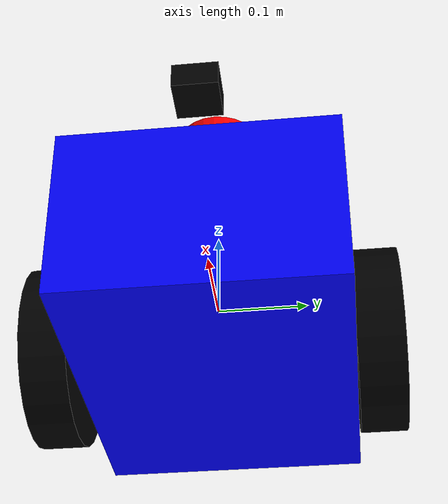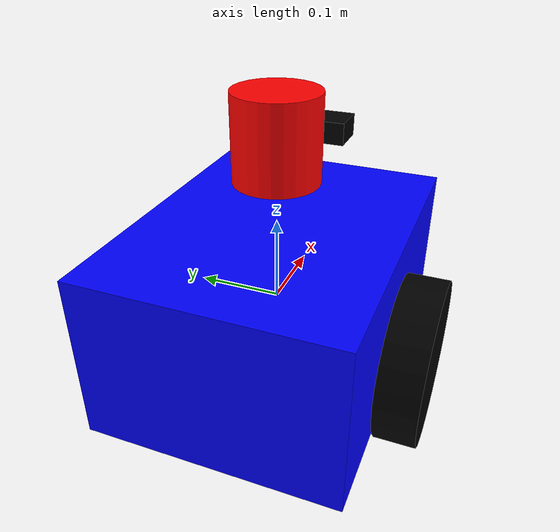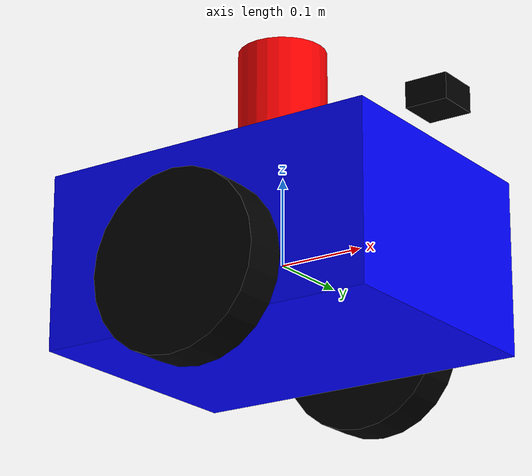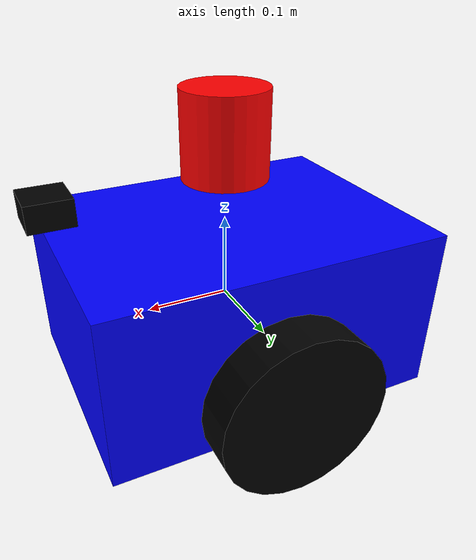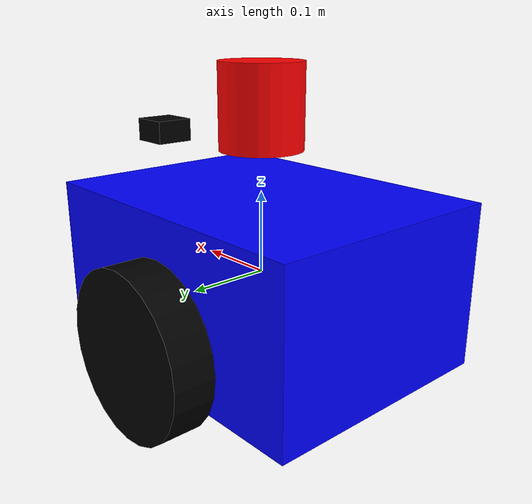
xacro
<?xml version="1.0"?>
<robot xmlns:xacro="http://www.ros.org/wiki/xacro" name="virtual_robot">

  <!-- Base Link -->
  <link name="base_link">
    <visual>
      <geometry>
        <box size="0.4 0.3 0.2"/>
      </geometry>
      <material name="blue">
        <color rgba="0 0 1 1"/>
      </material>
    </visual>
    <collision>
      <geometry>
        <box size="0.4 0.3 0.2"/>
      </geometry>
    </collision>
    <inertial>
      <mass value="10.0"/>
      <inertia ixx="0.4" ixy="0.0" ixz="0.0" iyy="0.4" iyz="0.0" izz="0.2"/>
    </inertial>
  </link>

  <!-- Camera Link -->
  <link name="camera_link">
    <visual>
      <geometry>
        <box size="0.05 0.05 0.03"/>
      </geometry>
      <material name="black">
        <color rgba="0 0 0 1"/>
      </material>
    </visual>
    <collision>
      <geometry>
        <box size="0.05 0.05 0.03"/>
      </geometry>
    </collision>
    <inertial>
      <mass value="0.1"/>
      <inertia ixx="0.0001" ixy="0.0" ixz="0.0" iyy="0.0001" iyz="0.0" izz="0.0001"/>
    </inertial>
  </link>

  <!-- Camera Joint -->
  <joint name="camera_joint" type="fixed">
    <parent link="base_link"/>
    <child link="camera_link"/>
    <origin xyz="0.2 0.0 0.15" rpy="0 0 0"/>
  </joint>

  <!-- Camera Gazebo Plugin -->
  <gazebo reference="camera_link">
    <sensor type="camera" name="camera_sensor">
      <update_rate>30</update_rate>
      <camera name="camera">
        <horizontal_fov>1.047198</horizontal_fov>
        <image>
          <width>640</width>
          <height>480</height>
          <format>R8G8B8</format>
        </image>
        <clip>
          <near>0.05</near>
          <far>3</far>
        </clip>
      </camera>
      <plugin name="camera_controller" filename="libgazebo_ros_camera.so">
        <ros>
          <namespace>/</namespace>
          <remapping>~/image_raw:=/camera/image_raw</remapping>
          <remapping>~/camera_info:=/camera/camera_info</remapping>
        </ros>
        <camera_name>camera</camera_name>
        <frame_name>camera_link</frame_name>
        <hack_baseline>0.07</hack_baseline>
        <min_depth>0.05</min_depth>
        <max_depth>3.0</max_depth>
      </plugin>
    </sensor>
  </gazebo>

  <!-- LIDAR Link -->
  <link name="lidar_link">
    <visual>
      <geometry>
        <cylinder radius="0.05" length="0.1"/>
      </geometry>
      <material name="red">
        <color rgba="1 0 0 1"/>
      </material>
    </visual>
    <collision>
      <geometry>
        <cylinder radius="0.05" length="0.1"/>
      </geometry>
    </collision>
    <inertial>
      <mass value="0.2"/>
      <inertia ixx="0.0001" ixy="0.0" ixz="0.0" iyy="0.0001" iyz="0.0" izz="0.0001"/>
    </inertial>
  </link>

  <!-- LIDAR Joint -->
  <joint name="lidar_joint" type="fixed">
    <parent link="base_link"/>
    <child link="lidar_link"/>
    <origin xyz="0.0 0.0 0.2" rpy="0 0 0"/>
  </joint>

  <!-- LIDAR Gazebo Plugin -->
  <gazebo reference="lidar_link">
    <sensor type="ray" name="lidar_sensor">
      <pose>0 0 0 0 0 0</pose>
      <visualize>true</visualize>
      <update_rate>10</update_rate>
      <ray>
        <scan>
          <horizontal>
            <samples>360</samples>
            <resolution>1</resolution>
            <min_angle>-3.14159</min_angle>
            <max_angle>3.14159</max_angle>
          </horizontal>
        </scan>
        <range>
          <min>0.1</min>
          <max>10.0</max>
          <resolution>0.01</resolution>
        </range>
        <noise>
          <type>gaussian</type>
          <mean>0.0</mean>
          <stddev>0.01</stddev>
        </noise>
      </ray>
      <plugin name="lidar_controller" filename="libgazebo_ros_ray_sensor.so">
        <ros>
          <namespace>/</namespace>
          <remapping>~/out:=/lidar/scan</remapping>
        </ros>
        <output_type>sensor_msgs/LaserScan</output_type>
        <frame_name>lidar_link</frame_name>
      </plugin>
    </sensor>
  </gazebo>

  <!-- Left Wheel -->
  <link name="left_wheel">
    <visual>
      <geometry>
        <cylinder radius="0.1" length="0.05"/>
      </geometry>
      <material name="black">
        <color rgba="0 0 0 1"/>
      </material>
    </visual>
    <collision>
      <geometry>
        <cylinder radius="0.1" length="0.05"/>
      </geometry>
      <surface>
        <friction>
          <ode>
            <mu>1.0</mu>
            <mu2>1.0</mu2>
          </ode>
        </friction>
      </surface>
    </collision>
    <inertial>
      <mass value="0.5"/>
      <inertia ixx="0.01" ixy="0.0" ixz="0.0" iyy="0.01" iyz="0.0" izz="0.01"/>
    </inertial>
  </link>

  <!-- Right Wheel -->
  <link name="right_wheel">
    <visual>
      <geometry>
        <cylinder radius="0.1" length="0.05"/>
      </geometry>
      <material name="black">
        <color rgba="0 0 0 1"/>
      </material>
    </visual>
    <collision>
      <geometry>
        <cylinder radius="0.1" length="0.05"/>
      </geometry>
      <surface>
        <friction>
          <ode>
            <mu>1.0</mu>
            <mu2>1.0</mu2>
          </ode>
        </friction>
      </surface>
    </collision>
    <inertial>
      <mass value="0.5"/>
      <inertia ixx="0.01" ixy="0.0" ixz="0.0" iyy="0.01" iyz="0.0" izz="0.01"/>
    </inertial>
  </link>

  <!-- Left Wheel Joint -->
  <joint name="left_wheel_joint" type="continuous">
    <parent link="base_link"/>
    <child link="left_wheel"/>
    <origin xyz="0.0 0.175 -0.05" rpy="1.5708 0 0"/>
    <axis xyz="0 0 1"/>
  </joint>

  <!-- Right Wheel Joint -->
  <joint name="right_wheel_joint" type="continuous">
    <parent link="base_link"/>
    <child link="right_wheel"/>
    <origin xyz="0.0 -0.175 -0.05" rpy="1.5708 0 0"/>
    <axis xyz="0 0 1"/>
  </joint>

  <!-- Differential Drive Plugin -->
  <gazebo>
    <plugin name="differential_drive_controller" filename="libgazebo_ros_diff_drive.so">
      <update_rate>30</update_rate>
      <left_joint>left_wheel_joint</left_joint>
      <right_joint>right_wheel_joint</right_joint>
      <wheel_separation>0.35</wheel_separation>
      <wheel_diameter>0.2</wheel_diameter>
      <max_wheel_torque>20</max_wheel_torque>
      <max_wheel_acceleration>1.0</max_wheel_acceleration>
      <command_topic>cmd_vel</command_topic>
      <publish_odom>true</publish_odom>
      <publish_odom_tf>true</publish_odom_tf>
      <publish_wheel_tf>true</publish_wheel_tf>
      <odometry_topic>odom</odometry_topic>
      <odometry_frame>odom</odometry_frame>
      <robot_base_frame>base_link</robot_base_frame>
    </plugin>
  </gazebo>

</robot>
